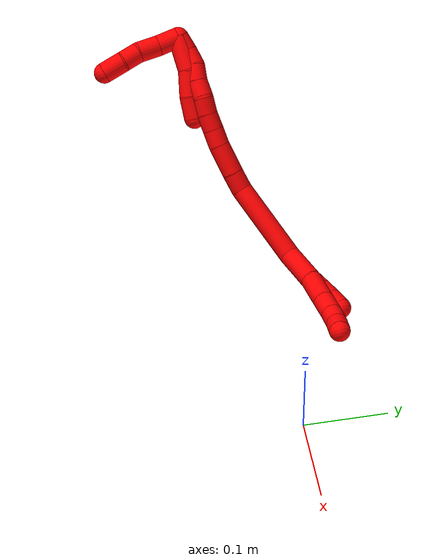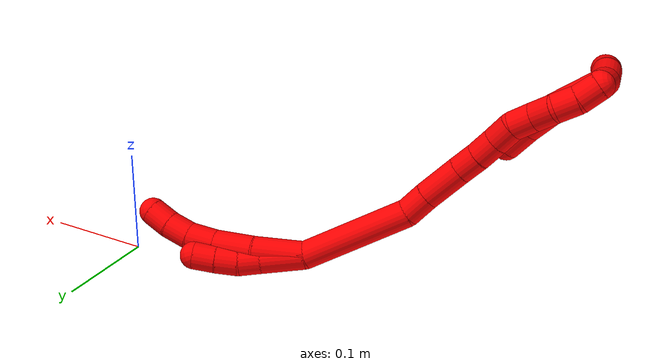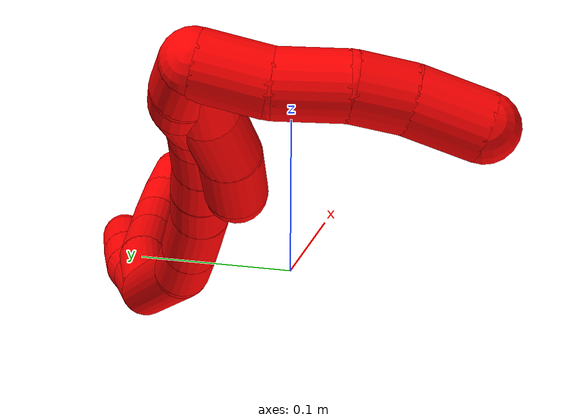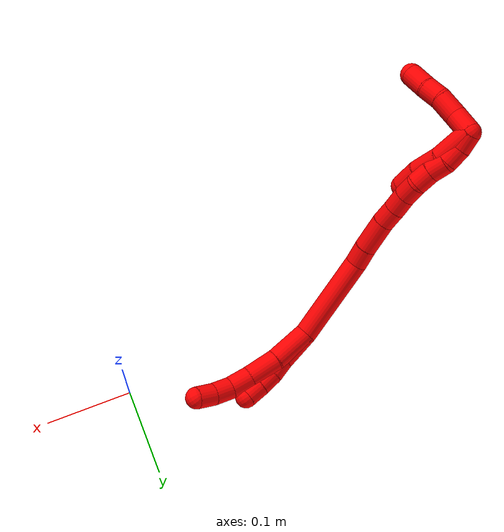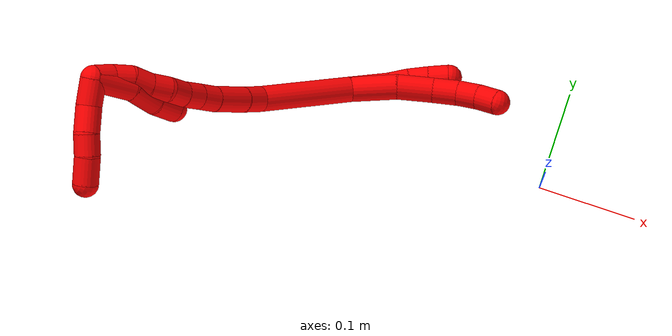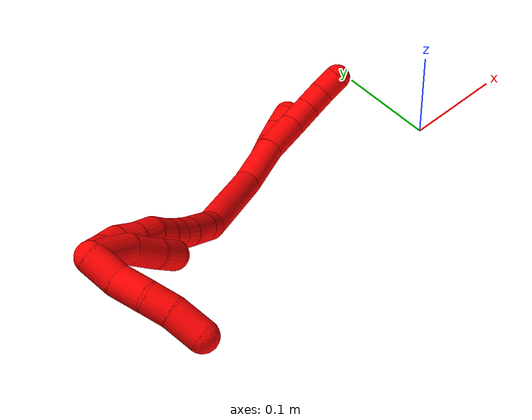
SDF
<sdf version="1.7">
 <world name="default">
  <model name="2">
   <static>0</static>
   <link name="2">
    <collision name="collision-cylinder-e_1_2_8">
     <pose>0.011618 0.006539 -0.019051 -2.81095 0.523194 -2.02703</pose>
     <geometry><cylinder><radius>0.0125</radius><length>0.046506</length></cylinder></geometry>
     <surface>
      <friction><ode><mu>1.16</mu><mu2>1.16</mu2><slip1>0</slip1><slip2>0</slip2></ode></friction>
      <contact><ode><kp>1e+06</kp><kd>1</kd><max_vel>0</max_vel><min_depth>0.001</min_depth></ode></contact>
     </surface>
    </collision>
    <visual name="visual-cylinder-e_1_2_8">
     <pose>0.011618 0.006539 -0.019051 -2.81095 0.523194 -2.02703</pose>
     <geometry><cylinder><radius>0.0125</radius><length>0.046506</length></cylinder></geometry>
     <material><ambient>1 0 0 1</ambient></material>
    </visual>
    <collision name="collision-cylinder-e_2_8_9">
     <pose>0.032212 0.015553 -0.053311 -2.98028 0.52748 -2.55987</pose>
     <geometry><cylinder><radius>0.0125</radius><length>0.035664</length></cylinder></geometry>
     <surface>
      <friction><ode><mu>1.16</mu><mu2>1.16</mu2><slip1>0</slip1><slip2>0</slip2></ode></friction>
      <contact><ode><kp>1e+06</kp><kd>1</kd><max_vel>0</max_vel><min_depth>0.001</min_depth></ode></contact>
     </surface>
    </collision>
    <visual name="visual-cylinder-e_2_8_9">
     <pose>0.032212 0.015553 -0.053311 -2.98028 0.52748 -2.55987</pose>
     <geometry><cylinder><radius>0.0125</radius><length>0.035664</length></cylinder></geometry>
     <material><ambient>1 0 0 1</ambient></material>
    </visual>
    <collision name="collision-cylinder-e_3_9_10">
     <pose>0.048698 0.019267 -0.078657 -3.01998 0.634011 -2.77463</pose>
     <geometry><cylinder><radius>0.0125</radius><length>0.025356</length></cylinder></geometry>
     <surface>
      <friction><ode><mu>1.16</mu><mu2>1.16</mu2><slip1>0</slip1><slip2>0</slip2></ode></friction>
      <contact><ode><kp>1e+06</kp><kd>1</kd><max_vel>0</max_vel><min_depth>0.001</min_depth></ode></contact>
     </surface>
    </collision>
    <visual name="visual-cylinder-e_3_9_10">
     <pose>0.048698 0.019267 -0.078657 -3.01998 0.634011 -2.77463</pose>
     <geometry><cylinder><radius>0.0125</radius><length>0.025356</length></cylinder></geometry>
     <material><ambient>1 0 0 1</ambient></material>
    </visual>
    <collision name="collision-cylinder-e_4_10_11">
     <pose>0.064134 0.020376 -0.096093 3.12376 0.826591 3.10093</pose>
     <geometry><cylinder><radius>0.0125</radius><length>0.021546</length></cylinder></geometry>
     <surface>
      <friction><ode><mu>1.16</mu><mu2>1.16</mu2><slip1>0</slip1><slip2>0</slip2></ode></friction>
      <contact><ode><kp>1e+06</kp><kd>1</kd><max_vel>0</max_vel><min_depth>0.001</min_depth></ode></contact>
     </surface>
    </collision>
    <visual name="visual-cylinder-e_4_10_11">
     <pose>0.064134 0.020376 -0.096093 3.12376 0.826591 3.10093</pose>
     <geometry><cylinder><radius>0.0125</radius><length>0.021546</length></cylinder></geometry>
     <material><ambient>1 0 0 1</ambient></material>
    </visual>
    <collision name="collision-cylinder-e_5_11_6">
     <pose>0.080381 0.019 -0.109609 2.94392 0.91947 2.74627</pose>
     <geometry><cylinder><radius>0.0125</radius><length>0.020928</length></cylinder></geometry>
     <surface>
      <friction><ode><mu>1.16</mu><mu2>1.16</mu2><slip1>0</slip1><slip2>0</slip2></ode></friction>
      <contact><ode><kp>1e+06</kp><kd>1</kd><max_vel>0</max_vel><min_depth>0.001</min_depth></ode></contact>
     </surface>
    </collision>
    <visual name="visual-cylinder-e_5_11_6">
     <pose>0.080381 0.019 -0.109609 2.94392 0.91947 2.74627</pose>
     <geometry><cylinder><radius>0.0125</radius><length>0.020928</length></cylinder></geometry>
     <material><ambient>1 0 0 1</ambient></material>
    </visual>
    <collision name="collision-cylinder-e_1_2_12">
     <pose>0.006375 0.007087 -0.017388 -2.75458 0.327313 -1.40048</pose>
     <geometry><cylinder><radius>0.0125</radius><length>0.039658</length></cylinder></geometry>
     <surface>
      <friction><ode><mu>1.16</mu><mu2>1.16</mu2><slip1>0</slip1><slip2>0</slip2></ode></friction>
      <contact><ode><kp>1e+06</kp><kd>1</kd><max_vel>0</max_vel><min_depth>0.001</min_depth></ode></contact>
     </surface>
    </collision>
    <visual name="visual-cylinder-e_1_2_12">
     <pose>0.006375 0.007087 -0.017388 -2.75458 0.327313 -1.40048</pose>
     <geometry><cylinder><radius>0.0125</radius><length>0.039658</length></cylinder></geometry>
     <material><ambient>1 0 0 1</ambient></material>
    </visual>
    <collision name="collision-cylinder-e_2_12_13">
     <pose>0.016215 0.018627 -0.043059 -2.64828 0.352957 -1.23252</pose>
     <geometry><cylinder><radius>0.0125</radius><length>0.020046</length></cylinder></geometry>
     <surface>
      <friction><ode><mu>1.16</mu><mu2>1.16</mu2><slip1>0</slip1><slip2>0</slip2></ode></friction>
      <contact><ode><kp>1e+06</kp><kd>1</kd><max_vel>0</max_vel><min_depth>0.001</min_depth></ode></contact>
     </surface>
    </collision>
    <visual name="visual-cylinder-e_2_12_13">
     <pose>0.016215 0.018627 -0.043059 -2.64828 0.352957 -1.23252</pose>
     <geometry><cylinder><radius>0.0125</radius><length>0.020046</length></cylinder></geometry>
     <material><ambient>1 0 0 1</ambient></material>
    </visual>
    <collision name="collision-cylinder-e_3_13_14">
     <pose>0.025063 0.026432 -0.059179 -2.73748 0.563371 -1.90959</pose>
     <geometry><cylinder><radius>0.0125</radius><length>0.020163</length></cylinder></geometry>
     <surface>
      <friction><ode><mu>1.16</mu><mu2>1.16</mu2><slip1>0</slip1><slip2>0</slip2></ode></friction>
      <contact><ode><kp>1e+06</kp><kd>1</kd><max_vel>0</max_vel><min_depth>0.001</min_depth></ode></contact>
     </surface>
    </collision>
    <visual name="visual-cylinder-e_3_13_14">
     <pose>0.025063 0.026432 -0.059179 -2.73748 0.563371 -1.90959</pose>
     <geometry><cylinder><radius>0.0125</radius><length>0.020163</length></cylinder></geometry>
     <material><ambient>1 0 0 1</ambient></material>
    </visual>
    <collision name="collision-cylinder-e_4_14_5">
     <pose>0.036196 0.032626 -0.074775 -2.79043 0.607867 -2.11208</pose>
     <geometry><cylinder><radius>0.0125</radius><length>0.020133</length></cylinder></geometry>
     <surface>
      <friction><ode><mu>1.16</mu><mu2>1.16</mu2><slip1>0</slip1><slip2>0</slip2></ode></friction>
      <contact><ode><kp>1e+06</kp><kd>1</kd><max_vel>0</max_vel><min_depth>0.001</min_depth></ode></contact>
     </surface>
    </collision>
    <visual name="visual-cylinder-e_4_14_5">
     <pose>0.036196 0.032626 -0.074775 -2.79043 0.607867 -2.11208</pose>
     <geometry><cylinder><radius>0.0125</radius><length>0.020133</length></cylinder></geometry>
     <material><ambient>1 0 0 1</ambient></material>
    </visual>
    <collision name="collision-cylinder-e_1_2_15">
     <pose>-0.001342 -0.018588 0.045626 0.386874 -0.027223 -0.005333</pose>
     <geometry><cylinder><radius>0.0125</radius><length>0.098571</length></cylinder></geometry>
     <surface>
      <friction><ode><mu>1.16</mu><mu2>1.16</mu2><slip1>0</slip1><slip2>0</slip2></ode></friction>
      <contact><ode><kp>1e+06</kp><kd>1</kd><max_vel>0</max_vel><min_depth>0.001</min_depth></ode></contact>
     </surface>
    </collision>
    <visual name="visual-cylinder-e_1_2_15">
     <pose>-0.001342 -0.018588 0.045626 0.386874 -0.027223 -0.005333</pose>
     <geometry><cylinder><radius>0.0125</radius><length>0.098571</length></cylinder></geometry>
     <material><ambient>1 0 0 1</ambient></material>
    </visual>
    <collision name="collision-cylinder-e_2_15_16">
     <pose>0.000855 -0.04073 0.101699 0.327815 0.310249 0.051716</pose>
     <geometry><cylinder><radius>0.0125</radius><length>0.023175</length></cylinder></geometry>
     <surface>
      <friction><ode><mu>1.16</mu><mu2>1.16</mu2><slip1>0</slip1><slip2>0</slip2></ode></friction>
      <contact><ode><kp>1e+06</kp><kd>1</kd><max_vel>0</max_vel><min_depth>0.001</min_depth></ode></contact>
     </surface>
    </collision>
    <visual name="visual-cylinder-e_2_15_16">
     <pose>0.000855 -0.04073 0.101699 0.327815 0.310249 0.051716</pose>
     <geometry><cylinder><radius>0.0125</radius><length>0.023175</length></cylinder></geometry>
     <material><ambient>1 0 0 1</ambient></material>
    </visual>
    <collision name="collision-cylinder-e_3_16_17">
     <pose>0.009189 -0.049278 0.129237 0.284381 0.263136 0.037884</pose>
     <geometry><cylinder><radius>0.0125</radius><length>0.036882</length></cylinder></geometry>
     <surface>
      <friction><ode><mu>1.16</mu><mu2>1.16</mu2><slip1>0</slip1><slip2>0</slip2></ode></friction>
      <contact><ode><kp>1e+06</kp><kd>1</kd><max_vel>0</max_vel><min_depth>0.001</min_depth></ode></contact>
     </surface>
    </collision>
    <visual name="visual-cylinder-e_3_16_17">
     <pose>0.009189 -0.049278 0.129237 0.284381 0.263136 0.037884</pose>
     <geometry><cylinder><radius>0.0125</radius><length>0.036882</length></cylinder></geometry>
     <material><ambient>1 0 0 1</ambient></material>
    </visual>
    <collision name="collision-cylinder-e_4_17_18">
     <pose>0.016632 -0.055971 0.156117 0.171704 0.260379 0.022536</pose>
     <geometry><cylinder><radius>0.0125</radius><length>0.020562</length></cylinder></geometry>
     <surface>
      <friction><ode><mu>1.16</mu><mu2>1.16</mu2><slip1>0</slip1><slip2>0</slip2></ode></friction>
      <contact><ode><kp>1e+06</kp><kd>1</kd><max_vel>0</max_vel><min_depth>0.001</min_depth></ode></contact>
     </surface>
    </collision>
    <visual name="visual-cylinder-e_4_17_18">
     <pose>0.016632 -0.055971 0.156117 0.171704 0.260379 0.022536</pose>
     <geometry><cylinder><radius>0.0125</radius><length>0.020562</length></cylinder></geometry>
     <material><ambient>1 0 0 1</ambient></material>
    </visual>
    <collision name="collision-cylinder-e_5_18_19">
     <pose>0.022493 -0.059584 0.175325 0.200544 0.322678 0.032746</pose>
     <geometry><cylinder><radius>0.0125</radius><length>0.020271</length></cylinder></geometry>
     <surface>
      <friction><ode><mu>1.16</mu><mu2>1.16</mu2><slip1>0</slip1><slip2>0</slip2></ode></friction>
      <contact><ode><kp>1e+06</kp><kd>1</kd><max_vel>0</max_vel><min_depth>0.001</min_depth></ode></contact>
     </surface>
    </collision>
    <visual name="visual-cylinder-e_5_18_19">
     <pose>0.022493 -0.059584 0.175325 0.200544 0.322678 0.032746</pose>
     <geometry><cylinder><radius>0.0125</radius><length>0.020271</length></cylinder></geometry>
     <material><ambient>1 0 0 1</ambient></material>
    </visual>
    <collision name="collision-cylinder-e_6_19_20">
     <pose>0.029241 -0.062191 0.194254 0.072687 0.354897 0.013041</pose>
     <geometry><cylinder><radius>0.0125</radius><length>0.020336</length></cylinder></geometry>
     <surface>
      <friction><ode><mu>1.16</mu><mu2>1.16</mu2><slip1>0</slip1><slip2>0</slip2></ode></friction>
      <contact><ode><kp>1e+06</kp><kd>1</kd><max_vel>0</max_vel><min_depth>0.001</min_depth></ode></contact>
     </surface>
    </collision>
    <visual name="visual-cylinder-e_6_19_20">
     <pose>0.029241 -0.062191 0.194254 0.072687 0.354897 0.013041</pose>
     <geometry><cylinder><radius>0.0125</radius><length>0.020336</length></cylinder></geometry>
     <material><ambient>1 0 0 1</ambient></material>
    </visual>
    <collision name="collision-cylinder-e_7_20_21">
     <pose>0.033121 -0.064046 0.21379 0.115464 0.034338 0.001985</pose>
     <geometry><cylinder><radius>0.0125</radius><length>0.0202</length></cylinder></geometry>
     <surface>
      <friction><ode><mu>1.16</mu><mu2>1.16</mu2><slip1>0</slip1><slip2>0</slip2></ode></friction>
      <contact><ode><kp>1e+06</kp><kd>1</kd><max_vel>0</max_vel><min_depth>0.001</min_depth></ode></contact>
     </surface>
    </collision>
    <visual name="visual-cylinder-e_7_20_21">
     <pose>0.033121 -0.064046 0.21379 0.115464 0.034338 0.001985</pose>
     <geometry><cylinder><radius>0.0125</radius><length>0.0202</length></cylinder></geometry>
     <material><ambient>1 0 0 1</ambient></material>
    </visual>
    <collision name="collision-cylinder-e_8_21_22">
     <pose>0.033931 -0.064583 0.233787 -0.062675 0.046388 -0.001454</pose>
     <geometry><cylinder><radius>0.0125</radius><length>0.02</length></cylinder></geometry>
     <surface>
      <friction><ode><mu>1.16</mu><mu2>1.16</mu2><slip1>0</slip1><slip2>0</slip2></ode></friction>
      <contact><ode><kp>1e+06</kp><kd>1</kd><max_vel>0</max_vel><min_depth>0.001</min_depth></ode></contact>
     </surface>
    </collision>
    <visual name="visual-cylinder-e_8_21_22">
     <pose>0.033931 -0.064583 0.233787 -0.062675 0.046388 -0.001454</pose>
     <geometry><cylinder><radius>0.0125</radius><length>0.02</length></cylinder></geometry>
     <material><ambient>1 0 0 1</ambient></material>
    </visual>
    <collision name="collision-cylinder-e_9_22_23">
     <pose>0.034144 -0.06634 0.253465 0.240655 -0.025147 -0.003041</pose>
     <geometry><cylinder><radius>0.0125</radius><length>0.020001</length></cylinder></geometry>
     <surface>
      <friction><ode><mu>1.16</mu><mu2>1.16</mu2><slip1>0</slip1><slip2>0</slip2></ode></friction>
      <contact><ode><kp>1e+06</kp><kd>1</kd><max_vel>0</max_vel><min_depth>0.001</min_depth></ode></contact>
     </surface>
    </collision>
    <visual name="visual-cylinder-e_9_22_23">
     <pose>0.034144 -0.06634 0.253465 0.240655 -0.025147 -0.003041</pose>
     <geometry><cylinder><radius>0.0125</radius><length>0.020001</length></cylinder></geometry>
     <material><ambient>1 0 0 1</ambient></material>
    </visual>
    <collision name="collision-cylinder-e_10_23_1">
     <pose>0.035658 -0.072083 0.272427 0.348342 0.177463 0.031305</pose>
     <geometry><cylinder><radius>0.0125</radius><length>0.020001</length></cylinder></geometry>
     <surface>
      <friction><ode><mu>1.16</mu><mu2>1.16</mu2><slip1>0</slip1><slip2>0</slip2></ode></friction>
      <contact><ode><kp>1e+06</kp><kd>1</kd><max_vel>0</max_vel><min_depth>0.001</min_depth></ode></contact>
     </surface>
    </collision>
    <visual name="visual-cylinder-e_10_23_1">
     <pose>0.035658 -0.072083 0.272427 0.348342 0.177463 0.031305</pose>
     <geometry><cylinder><radius>0.0125</radius><length>0.020001</length></cylinder></geometry>
     <material><ambient>1 0 0 1</ambient></material>
    </visual>
    <collision name="collision-cylinder-e_1_1_24">
     <pose>0.035225 -0.073839 0.260826 -3.06484 -0.104727 1.87704</pose>
     <geometry><cylinder><radius>0.0125</radius><length>0.042059</length></cylinder></geometry>
     <surface>
      <friction><ode><mu>1.16</mu><mu2>1.16</mu2><slip1>0</slip1><slip2>0</slip2></ode></friction>
      <contact><ode><kp>1e+06</kp><kd>1</kd><max_vel>0</max_vel><min_depth>0.001</min_depth></ode></contact>
     </surface>
    </collision>
    <visual name="visual-cylinder-e_1_1_24">
     <pose>0.035225 -0.073839 0.260826 -3.06484 -0.104727 1.87704</pose>
     <geometry><cylinder><radius>0.0125</radius><length>0.042059</length></cylinder></geometry>
     <material><ambient>1 0 0 1</ambient></material>
    </visual>
    <collision name="collision-cylinder-e_2_24_25">
     <pose>0.028585 -0.074401 0.225104 2.99697 -0.287406 -2.21334</pose>
     <geometry><cylinder><radius>0.0125</radius><length>0.031338</length></cylinder></geometry>
     <surface>
      <friction><ode><mu>1.16</mu><mu2>1.16</mu2><slip1>0</slip1><slip2>0</slip2></ode></friction>
      <contact><ode><kp>1e+06</kp><kd>1</kd><max_vel>0</max_vel><min_depth>0.001</min_depth></ode></contact>
     </surface>
    </collision>
    <visual name="visual-cylinder-e_2_24_25">
     <pose>0.028585 -0.074401 0.225104 2.99697 -0.287406 -2.21334</pose>
     <geometry><cylinder><radius>0.0125</radius><length>0.031338</length></cylinder></geometry>
     <material><ambient>1 0 0 1</ambient></material>
    </visual>
    <collision name="collision-cylinder-e_3_25_4">
     <pose>0.019775 -0.076176 0.197677 -3.11047 -0.334637 2.9578</pose>
     <geometry><cylinder><radius>0.0125</radius><length>0.026602</length></cylinder></geometry>
     <surface>
      <friction><ode><mu>1.16</mu><mu2>1.16</mu2><slip1>0</slip1><slip2>0</slip2></ode></friction>
      <contact><ode><kp>1e+06</kp><kd>1</kd><max_vel>0</max_vel><min_depth>0.001</min_depth></ode></contact>
     </surface>
    </collision>
    <visual name="visual-cylinder-e_3_25_4">
     <pose>0.019775 -0.076176 0.197677 -3.11047 -0.334637 2.9578</pose>
     <geometry><cylinder><radius>0.0125</radius><length>0.026602</length></cylinder></geometry>
     <material><ambient>1 0 0 1</ambient></material>
    </visual>
    <collision name="collision-cylinder-e_1_1_26">
     <pose>0.035268 -0.08815 0.279537 1.73776 -0.165715 -0.195802</pose>
     <geometry><cylinder><radius>0.0125</radius><length>0.026131</length></cylinder></geometry>
     <surface>
      <friction><ode><mu>1.16</mu><mu2>1.16</mu2><slip1>0</slip1><slip2>0</slip2></ode></friction>
      <contact><ode><kp>1e+06</kp><kd>1</kd><max_vel>0</max_vel><min_depth>0.001</min_depth></ode></contact>
     </surface>
    </collision>
    <visual name="visual-cylinder-e_1_1_26">
     <pose>0.035268 -0.08815 0.279537 1.73776 -0.165715 -0.195802</pose>
     <geometry><cylinder><radius>0.0125</radius><length>0.026131</length></cylinder></geometry>
     <material><ambient>1 0 0 1</ambient></material>
    </visual>
    <collision name="collision-cylinder-e_2_26_27">
     <pose>0.033917 -0.113777 0.275332 1.72919 0.061445 0.072031</pose>
     <geometry><cylinder><radius>0.0125</radius><length>0.026216</length></cylinder></geometry>
     <surface>
      <friction><ode><mu>1.16</mu><mu2>1.16</mu2><slip1>0</slip1><slip2>0</slip2></ode></friction>
      <contact><ode><kp>1e+06</kp><kd>1</kd><max_vel>0</max_vel><min_depth>0.001</min_depth></ode></contact>
     </surface>
    </collision>
    <visual name="visual-cylinder-e_2_26_27">
     <pose>0.033917 -0.113777 0.275332 1.72919 0.061445 0.072031</pose>
     <geometry><cylinder><radius>0.0125</radius><length>0.026216</length></cylinder></geometry>
     <material><ambient>1 0 0 1</ambient></material>
    </visual>
    <collision name="collision-cylinder-e_3_27_28">
     <pose>0.033973 -0.13647 0.269755 1.91589 -0.072049 -0.102418</pose>
     <geometry><cylinder><radius>0.0125</radius><length>0.020827</length></cylinder></geometry>
     <surface>
      <friction><ode><mu>1.16</mu><mu2>1.16</mu2><slip1>0</slip1><slip2>0</slip2></ode></friction>
      <contact><ode><kp>1e+06</kp><kd>1</kd><max_vel>0</max_vel><min_depth>0.001</min_depth></ode></contact>
     </surface>
    </collision>
    <visual name="visual-cylinder-e_3_27_28">
     <pose>0.033973 -0.13647 0.269755 1.91589 -0.072049 -0.102418</pose>
     <geometry><cylinder><radius>0.0125</radius><length>0.020827</length></cylinder></geometry>
     <material><ambient>1 0 0 1</ambient></material>
    </visual>
    <collision name="collision-cylinder-e_4_28_3">
     <pose>0.03016 -0.158716 0.262368 1.87191 -0.230426 -0.311687</pose>
     <geometry><cylinder><radius>0.0125</radius><length>0.026827</length></cylinder></geometry>
     <surface>
      <friction><ode><mu>1.16</mu><mu2>1.16</mu2><slip1>0</slip1><slip2>0</slip2></ode></friction>
      <contact><ode><kp>1e+06</kp><kd>1</kd><max_vel>0</max_vel><min_depth>0.001</min_depth></ode></contact>
     </surface>
    </collision>
    <visual name="visual-cylinder-e_4_28_3">
     <pose>0.03016 -0.158716 0.262368 1.87191 -0.230426 -0.311687</pose>
     <geometry><cylinder><radius>0.0125</radius><length>0.026827</length></cylinder></geometry>
     <material><ambient>1 0 0 1</ambient></material>
    </visual>
    <collision name="collision-sphere-3">
     <pose>0.027096 -0.171187 0.258495 0 -0 0</pose>
     <geometry><sphere><radius>0.0125</radius></sphere></geometry>
     <surface>
      <friction><ode><mu>1.16</mu><mu2>1.16</mu2><slip1>0</slip1><slip2>0</slip2></ode></friction>
      <contact><ode><kp>1e+06</kp><kd>1</kd><max_vel>0</max_vel><min_depth>0.001</min_depth></ode></contact>
     </surface>
    </collision>
    <visual name="visual-sphere-3">
     <pose>0.027096 -0.171187 0.258495 0 -0 0</pose>
     <geometry><sphere><radius>0.0125</radius></sphere></geometry>
     <material><ambient>1 0 0 1</ambient></material>
    </visual>
    <collision name="collision-sphere-28">
     <pose>0.033223 -0.146244 0.266241 0 -0 0</pose>
     <geometry><sphere><radius>0.0125</radius></sphere></geometry>
     <surface>
      <friction><ode><mu>1.16</mu><mu2>1.16</mu2><slip1>0</slip1><slip2>0</slip2></ode></friction>
      <contact><ode><kp>1e+06</kp><kd>1</kd><max_vel>0</max_vel><min_depth>0.001</min_depth></ode></contact>
     </surface>
    </collision>
    <visual name="visual-sphere-28">
     <pose>0.033223 -0.146244 0.266241 0 -0 0</pose>
     <geometry><sphere><radius>0.0125</radius></sphere></geometry>
     <material><ambient>1 0 0 1</ambient></material>
    </visual>
    <collision name="collision-sphere-27">
     <pose>0.034722 -0.126696 0.273269 0 -0 0</pose>
     <geometry><sphere><radius>0.0125</radius></sphere></geometry>
     <surface>
      <friction><ode><mu>1.16</mu><mu2>1.16</mu2><slip1>0</slip1><slip2>0</slip2></ode></friction>
      <contact><ode><kp>1e+06</kp><kd>1</kd><max_vel>0</max_vel><min_depth>0.001</min_depth></ode></contact>
     </surface>
    </collision>
    <visual name="visual-sphere-27">
     <pose>0.034722 -0.126696 0.273269 0 -0 0</pose>
     <geometry><sphere><radius>0.0125</radius></sphere></geometry>
     <material><ambient>1 0 0 1</ambient></material>
    </visual>
    <collision name="collision-sphere-26">
     <pose>0.033113 -0.100858 0.277396 0 -0 0</pose>
     <geometry><sphere><radius>0.0125</radius></sphere></geometry>
     <surface>
      <friction><ode><mu>1.16</mu><mu2>1.16</mu2><slip1>0</slip1><slip2>0</slip2></ode></friction>
      <contact><ode><kp>1e+06</kp><kd>1</kd><max_vel>0</max_vel><min_depth>0.001</min_depth></ode></contact>
     </surface>
    </collision>
    <visual name="visual-sphere-26">
     <pose>0.033113 -0.100858 0.277396 0 -0 0</pose>
     <geometry><sphere><radius>0.0125</radius></sphere></geometry>
     <material><ambient>1 0 0 1</ambient></material>
    </visual>
    <collision name="collision-sphere-4">
     <pose>0.015406 -0.075785 0.18512 0 -0 0</pose>
     <geometry><sphere><radius>0.0125</radius></sphere></geometry>
     <surface>
      <friction><ode><mu>1.16</mu><mu2>1.16</mu2><slip1>0</slip1><slip2>0</slip2></ode></friction>
      <contact><ode><kp>1e+06</kp><kd>1</kd><max_vel>0</max_vel><min_depth>0.001</min_depth></ode></contact>
     </surface>
    </collision>
    <visual name="visual-sphere-4">
     <pose>0.015406 -0.075785 0.18512 0 -0 0</pose>
     <geometry><sphere><radius>0.0125</radius></sphere></geometry>
     <material><ambient>1 0 0 1</ambient></material>
    </visual>
    <collision name="collision-sphere-25">
     <pose>0.024143 -0.076567 0.210234 0 -0 0</pose>
     <geometry><sphere><radius>0.0125</radius></sphere></geometry>
     <surface>
      <friction><ode><mu>1.16</mu><mu2>1.16</mu2><slip1>0</slip1><slip2>0</slip2></ode></friction>
      <contact><ode><kp>1e+06</kp><kd>1</kd><max_vel>0</max_vel><min_depth>0.001</min_depth></ode></contact>
     </surface>
    </collision>
    <visual name="visual-sphere-25">
     <pose>0.024143 -0.076567 0.210234 0 -0 0</pose>
     <geometry><sphere><radius>0.0125</radius></sphere></geometry>
     <material><ambient>1 0 0 1</ambient></material>
    </visual>
    <collision name="collision-sphere-24">
     <pose>0.033026 -0.072236 0.239974 0 -0 0</pose>
     <geometry><sphere><radius>0.0125</radius></sphere></geometry>
     <surface>
      <friction><ode><mu>1.16</mu><mu2>1.16</mu2><slip1>0</slip1><slip2>0</slip2></ode></friction>
      <contact><ode><kp>1e+06</kp><kd>1</kd><max_vel>0</max_vel><min_depth>0.001</min_depth></ode></contact>
     </surface>
    </collision>
    <visual name="visual-sphere-24">
     <pose>0.033026 -0.072236 0.239974 0 -0 0</pose>
     <geometry><sphere><radius>0.0125</radius></sphere></geometry>
     <material><ambient>1 0 0 1</ambient></material>
    </visual>
    <collision name="collision-sphere-1">
     <pose>0.037423 -0.075443 0.281679 0 -0 0</pose>
     <geometry><sphere><radius>0.0125</radius></sphere></geometry>
     <surface>
      <friction><ode><mu>1.16</mu><mu2>1.16</mu2><slip1>0</slip1><slip2>0</slip2></ode></friction>
      <contact><ode><kp>1e+06</kp><kd>1</kd><max_vel>0</max_vel><min_depth>0.001</min_depth></ode></contact>
     </surface>
    </collision>
    <visual name="visual-sphere-1">
     <pose>0.037423 -0.075443 0.281679 0 -0 0</pose>
     <geometry><sphere><radius>0.0125</radius></sphere></geometry>
     <material><ambient>1 0 0 1</ambient></material>
    </visual>
    <collision name="collision-sphere-23">
     <pose>0.033892 -0.068723 0.263175 0 -0 0</pose>
     <geometry><sphere><radius>0.0125</radius></sphere></geometry>
     <surface>
      <friction><ode><mu>1.16</mu><mu2>1.16</mu2><slip1>0</slip1><slip2>0</slip2></ode></friction>
      <contact><ode><kp>1e+06</kp><kd>1</kd><max_vel>0</max_vel><min_depth>0.001</min_depth></ode></contact>
     </surface>
    </collision>
    <visual name="visual-sphere-23">
     <pose>0.033892 -0.068723 0.263175 0 -0 0</pose>
     <geometry><sphere><radius>0.0125</radius></sphere></geometry>
     <material><ambient>1 0 0 1</ambient></material>
    </visual>
    <collision name="collision-sphere-22">
     <pose>0.034395 -0.063958 0.243756 0 -0 0</pose>
     <geometry><sphere><radius>0.0125</radius></sphere></geometry>
     <surface>
      <friction><ode><mu>1.16</mu><mu2>1.16</mu2><slip1>0</slip1><slip2>0</slip2></ode></friction>
      <contact><ode><kp>1e+06</kp><kd>1</kd><max_vel>0</max_vel><min_depth>0.001</min_depth></ode></contact>
     </surface>
    </collision>
    <visual name="visual-sphere-22">
     <pose>0.034395 -0.063958 0.243756 0 -0 0</pose>
     <geometry><sphere><radius>0.0125</radius></sphere></geometry>
     <material><ambient>1 0 0 1</ambient></material>
    </visual>
    <collision name="collision-sphere-21">
     <pose>0.033468 -0.065209 0.223817 0 -0 0</pose>
     <geometry><sphere><radius>0.0125</radius></sphere></geometry>
     <surface>
      <friction><ode><mu>1.16</mu><mu2>1.16</mu2><slip1>0</slip1><slip2>0</slip2></ode></friction>
      <contact><ode><kp>1e+06</kp><kd>1</kd><max_vel>0</max_vel><min_depth>0.001</min_depth></ode></contact>
     </surface>
    </collision>
    <visual name="visual-sphere-21">
     <pose>0.033468 -0.065209 0.223817 0 -0 0</pose>
     <geometry><sphere><radius>0.0125</radius></sphere></geometry>
     <material><ambient>1 0 0 1</ambient></material>
    </visual>
    <collision name="collision-sphere-6">
     <pose>0.088702 0.017754 -0.115829 0 -0 0</pose>
     <geometry><sphere><radius>0.0125</radius></sphere></geometry>
     <surface>
      <friction><ode><mu>1.16</mu><mu2>1.16</mu2><slip1>0</slip1><slip2>0</slip2></ode></friction>
      <contact><ode><kp>1e+06</kp><kd>1</kd><max_vel>0</max_vel><min_depth>0.001</min_depth></ode></contact>
     </surface>
    </collision>
    <visual name="visual-sphere-6">
     <pose>0.088702 0.017754 -0.115829 0 -0 0</pose>
     <geometry><sphere><radius>0.0125</radius></sphere></geometry>
     <material><ambient>1 0 0 1</ambient></material>
    </visual>
    <collision name="collision-sphere-11">
     <pose>0.072059 0.020246 -0.103389 0 -0 0</pose>
     <geometry><sphere><radius>0.0125</radius></sphere></geometry>
     <surface>
      <friction><ode><mu>1.16</mu><mu2>1.16</mu2><slip1>0</slip1><slip2>0</slip2></ode></friction>
      <contact><ode><kp>1e+06</kp><kd>1</kd><max_vel>0</max_vel><min_depth>0.001</min_depth></ode></contact>
     </surface>
    </collision>
    <visual name="visual-sphere-11">
     <pose>0.072059 0.020246 -0.103389 0 -0 0</pose>
     <geometry><sphere><radius>0.0125</radius></sphere></geometry>
     <material><ambient>1 0 0 1</ambient></material>
    </visual>
    <collision name="collision-sphere-10">
     <pose>0.056209 0.020506 -0.088796 0 -0 0</pose>
     <geometry><sphere><radius>0.0125</radius></sphere></geometry>
     <surface>
      <friction><ode><mu>1.16</mu><mu2>1.16</mu2><slip1>0</slip1><slip2>0</slip2></ode></friction>
      <contact><ode><kp>1e+06</kp><kd>1</kd><max_vel>0</max_vel><min_depth>0.001</min_depth></ode></contact>
     </surface>
    </collision>
    <visual name="visual-sphere-10">
     <pose>0.056209 0.020506 -0.088796 0 -0 0</pose>
     <geometry><sphere><radius>0.0125</radius></sphere></geometry>
     <material><ambient>1 0 0 1</ambient></material>
    </visual>
    <collision name="collision-sphere-9">
     <pose>0.041188 0.018028 -0.068519 0 -0 0</pose>
     <geometry><sphere><radius>0.0125</radius></sphere></geometry>
     <surface>
      <friction><ode><mu>1.16</mu><mu2>1.16</mu2><slip1>0</slip1><slip2>0</slip2></ode></friction>
      <contact><ode><kp>1e+06</kp><kd>1</kd><max_vel>0</max_vel><min_depth>0.001</min_depth></ode></contact>
     </surface>
    </collision>
    <visual name="visual-sphere-9">
     <pose>0.041188 0.018028 -0.068519 0 -0 0</pose>
     <geometry><sphere><radius>0.0125</radius></sphere></geometry>
     <material><ambient>1 0 0 1</ambient></material>
    </visual>
    <collision name="collision-sphere-2">
     <geometry><sphere><radius>0.0125</radius></sphere></geometry>
     <surface>
      <friction><ode><mu>1.16</mu><mu2>1.16</mu2><slip1>0</slip1><slip2>0</slip2></ode></friction>
      <contact><ode><kp>1e+06</kp><kd>1</kd><max_vel>0</max_vel><min_depth>0.001</min_depth></ode></contact>
     </surface>
    </collision>
    <visual name="visual-sphere-2">
     <geometry><sphere><radius>0.0125</radius></sphere></geometry>
     <material><ambient>1 0 0 1</ambient></material>
    </visual>
    <collision name="collision-sphere-19">
     <pose>0.025707 -0.061498 0.184745 0 -0 0</pose>
     <geometry><sphere><radius>0.0125</radius></sphere></geometry>
     <surface>
      <friction><ode><mu>1.16</mu><mu2>1.16</mu2><slip1>0</slip1><slip2>0</slip2></ode></friction>
      <contact><ode><kp>1e+06</kp><kd>1</kd><max_vel>0</max_vel><min_depth>0.001</min_depth></ode></contact>
     </surface>
    </collision>
    <visual name="visual-sphere-19">
     <pose>0.025707 -0.061498 0.184745 0 -0 0</pose>
     <geometry><sphere><radius>0.0125</radius></sphere></geometry>
     <material><ambient>1 0 0 1</ambient></material>
    </visual>
    <collision name="collision-sphere-8">
     <pose>0.023237 0.013078 -0.038103 0 -0 0</pose>
     <geometry><sphere><radius>0.0125</radius></sphere></geometry>
     <surface>
      <friction><ode><mu>1.16</mu><mu2>1.16</mu2><slip1>0</slip1><slip2>0</slip2></ode></friction>
      <contact><ode><kp>1e+06</kp><kd>1</kd><max_vel>0</max_vel><min_depth>0.001</min_depth></ode></contact>
     </surface>
    </collision>
    <visual name="visual-sphere-8">
     <pose>0.023237 0.013078 -0.038103 0 -0 0</pose>
     <geometry><sphere><radius>0.0125</radius></sphere></geometry>
     <material><ambient>1 0 0 1</ambient></material>
    </visual>
    <collision name="collision-sphere-12">
     <pose>0.01275 0.014173 -0.034775 0 -0 0</pose>
     <geometry><sphere><radius>0.0125</radius></sphere></geometry>
     <surface>
      <friction><ode><mu>1.16</mu><mu2>1.16</mu2><slip1>0</slip1><slip2>0</slip2></ode></friction>
      <contact><ode><kp>1e+06</kp><kd>1</kd><max_vel>0</max_vel><min_depth>0.001</min_depth></ode></contact>
     </surface>
    </collision>
    <visual name="visual-sphere-12">
     <pose>0.01275 0.014173 -0.034775 0 -0 0</pose>
     <geometry><sphere><radius>0.0125</radius></sphere></geometry>
     <material><ambient>1 0 0 1</ambient></material>
    </visual>
    <collision name="collision-sphere-13">
     <pose>0.019679 0.023081 -0.051343 0 -0 0</pose>
     <geometry><sphere><radius>0.0125</radius></sphere></geometry>
     <surface>
      <friction><ode><mu>1.16</mu><mu2>1.16</mu2><slip1>0</slip1><slip2>0</slip2></ode></friction>
      <contact><ode><kp>1e+06</kp><kd>1</kd><max_vel>0</max_vel><min_depth>0.001</min_depth></ode></contact>
     </surface>
    </collision>
    <visual name="visual-sphere-13">
     <pose>0.019679 0.023081 -0.051343 0 -0 0</pose>
     <geometry><sphere><radius>0.0125</radius></sphere></geometry>
     <material><ambient>1 0 0 1</ambient></material>
    </visual>
    <collision name="collision-sphere-14">
     <pose>0.030447 0.029783 -0.067016 0 -0 0</pose>
     <geometry><sphere><radius>0.0125</radius></sphere></geometry>
     <surface>
      <friction><ode><mu>1.16</mu><mu2>1.16</mu2><slip1>0</slip1><slip2>0</slip2></ode></friction>
      <contact><ode><kp>1e+06</kp><kd>1</kd><max_vel>0</max_vel><min_depth>0.001</min_depth></ode></contact>
     </surface>
    </collision>
    <visual name="visual-sphere-14">
     <pose>0.030447 0.029783 -0.067016 0 -0 0</pose>
     <geometry><sphere><radius>0.0125</radius></sphere></geometry>
     <material><ambient>1 0 0 1</ambient></material>
    </visual>
    <collision name="collision-sphere-5">
     <pose>0.041946 0.035468 -0.082535 0 -0 0</pose>
     <geometry><sphere><radius>0.0125</radius></sphere></geometry>
     <surface>
      <friction><ode><mu>1.16</mu><mu2>1.16</mu2><slip1>0</slip1><slip2>0</slip2></ode></friction>
      <contact><ode><kp>1e+06</kp><kd>1</kd><max_vel>0</max_vel><min_depth>0.001</min_depth></ode></contact>
     </surface>
    </collision>
    <visual name="visual-sphere-5">
     <pose>0.041946 0.035468 -0.082535 0 -0 0</pose>
     <geometry><sphere><radius>0.0125</radius></sphere></geometry>
     <material><ambient>1 0 0 1</ambient></material>
    </visual>
    <collision name="collision-sphere-15">
     <pose>-0.002683 -0.037177 0.091252 0 -0 0</pose>
     <geometry><sphere><radius>0.0125</radius></sphere></geometry>
     <surface>
      <friction><ode><mu>1.16</mu><mu2>1.16</mu2><slip1>0</slip1><slip2>0</slip2></ode></friction>
      <contact><ode><kp>1e+06</kp><kd>1</kd><max_vel>0</max_vel><min_depth>0.001</min_depth></ode></contact>
     </surface>
    </collision>
    <visual name="visual-sphere-15">
     <pose>-0.002683 -0.037177 0.091252 0 -0 0</pose>
     <geometry><sphere><radius>0.0125</radius></sphere></geometry>
     <material><ambient>1 0 0 1</ambient></material>
    </visual>
    <collision name="collision-sphere-16">
     <pose>0.004392 -0.044282 0.112146 0 -0 0</pose>
     <geometry><sphere><radius>0.0125</radius></sphere></geometry>
     <surface>
      <friction><ode><mu>1.16</mu><mu2>1.16</mu2><slip1>0</slip1><slip2>0</slip2></ode></friction>
      <contact><ode><kp>1e+06</kp><kd>1</kd><max_vel>0</max_vel><min_depth>0.001</min_depth></ode></contact>
     </surface>
    </collision>
    <visual name="visual-sphere-16">
     <pose>0.004392 -0.044282 0.112146 0 -0 0</pose>
     <geometry><sphere><radius>0.0125</radius></sphere></geometry>
     <material><ambient>1 0 0 1</ambient></material>
    </visual>
    <collision name="collision-sphere-17">
     <pose>0.013986 -0.054274 0.146328 0 -0 0</pose>
     <geometry><sphere><radius>0.0125</radius></sphere></geometry>
     <surface>
      <friction><ode><mu>1.16</mu><mu2>1.16</mu2><slip1>0</slip1><slip2>0</slip2></ode></friction>
      <contact><ode><kp>1e+06</kp><kd>1</kd><max_vel>0</max_vel><min_depth>0.001</min_depth></ode></contact>
     </surface>
    </collision>
    <visual name="visual-sphere-17">
     <pose>0.013986 -0.054274 0.146328 0 -0 0</pose>
     <geometry><sphere><radius>0.0125</radius></sphere></geometry>
     <material><ambient>1 0 0 1</ambient></material>
    </visual>
    <collision name="collision-sphere-18">
     <pose>0.019279 -0.057669 0.165905 0 -0 0</pose>
     <geometry><sphere><radius>0.0125</radius></sphere></geometry>
     <surface>
      <friction><ode><mu>1.16</mu><mu2>1.16</mu2><slip1>0</slip1><slip2>0</slip2></ode></friction>
      <contact><ode><kp>1e+06</kp><kd>1</kd><max_vel>0</max_vel><min_depth>0.001</min_depth></ode></contact>
     </surface>
    </collision>
    <visual name="visual-sphere-18">
     <pose>0.019279 -0.057669 0.165905 0 -0 0</pose>
     <geometry><sphere><radius>0.0125</radius></sphere></geometry>
     <material><ambient>1 0 0 1</ambient></material>
    </visual>
    <collision name="collision-sphere-20">
     <pose>0.032774 -0.062883 0.203763 0 -0 0</pose>
     <geometry><sphere><radius>0.0125</radius></sphere></geometry>
     <surface>
      <friction><ode><mu>1.16</mu><mu2>1.16</mu2><slip1>0</slip1><slip2>0</slip2></ode></friction>
      <contact><ode><kp>1e+06</kp><kd>1</kd><max_vel>0</max_vel><min_depth>0.001</min_depth></ode></contact>
     </surface>
    </collision>
    <visual name="visual-sphere-20">
     <pose>0.032774 -0.062883 0.203763 0 -0 0</pose>
     <geometry><sphere><radius>0.0125</radius></sphere></geometry>
     <material><ambient>1 0 0 1</ambient></material>
    </visual>
    <inertial>
     <pose>0.024525 -0.03919 0.105217 0 -0 0</pose>
     <mass>0.75</mass>
     <inertia><ixx>8.6e-05</ixx><ixy>0</ixy><ixz>0</ixz><iyy>9.1e-05</iyy><iyz>0</iyz><izz>2e-05</izz></inertia>
    </inertial>
   </link>
   <pose>-0.208114 0.02394 0.061663 0.016677 -1.05038 0.072713</pose>
  </model>
 </world>
</sdf>
